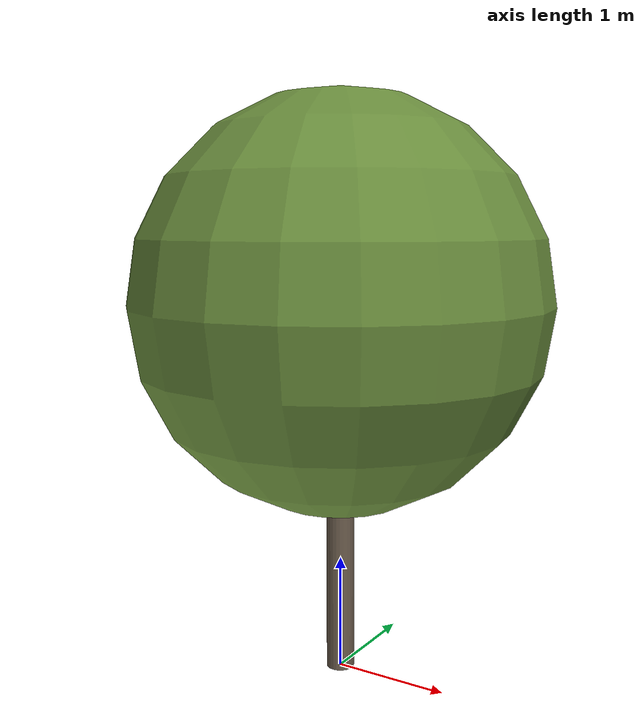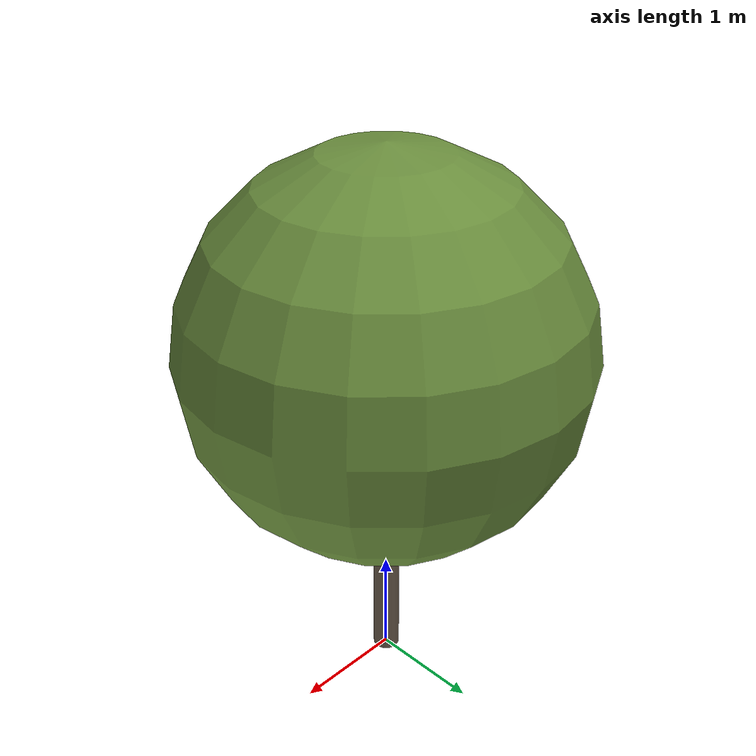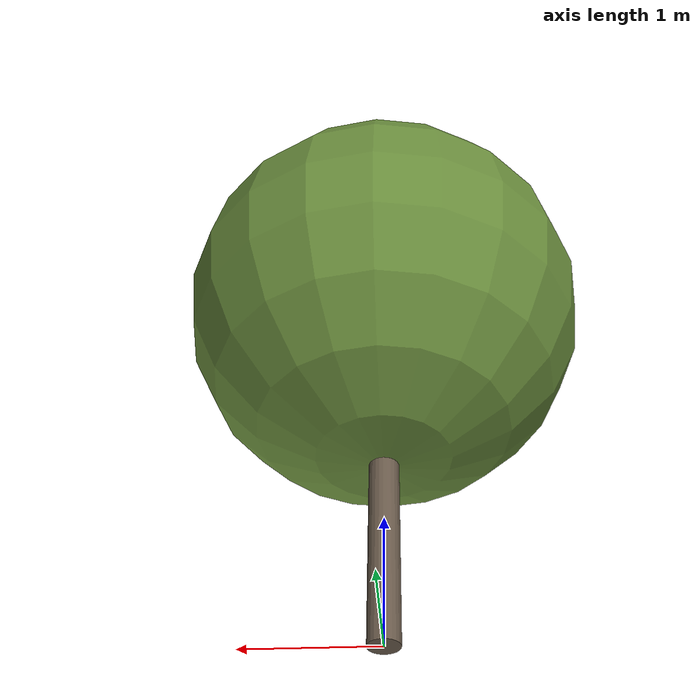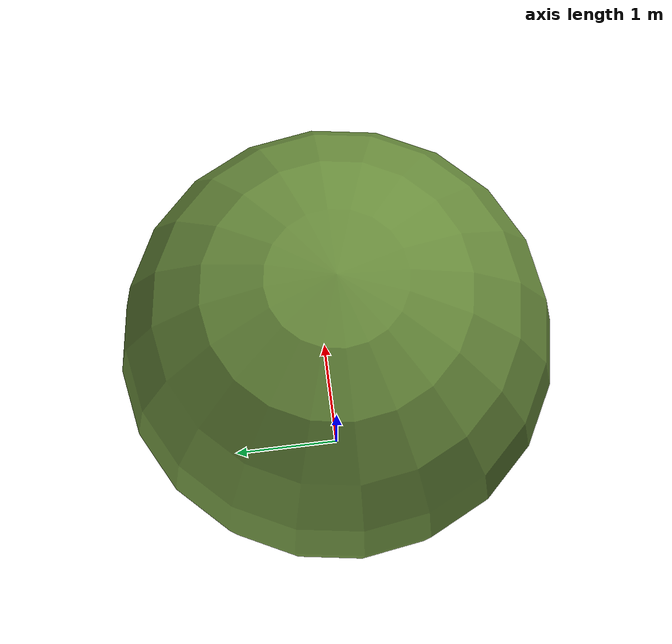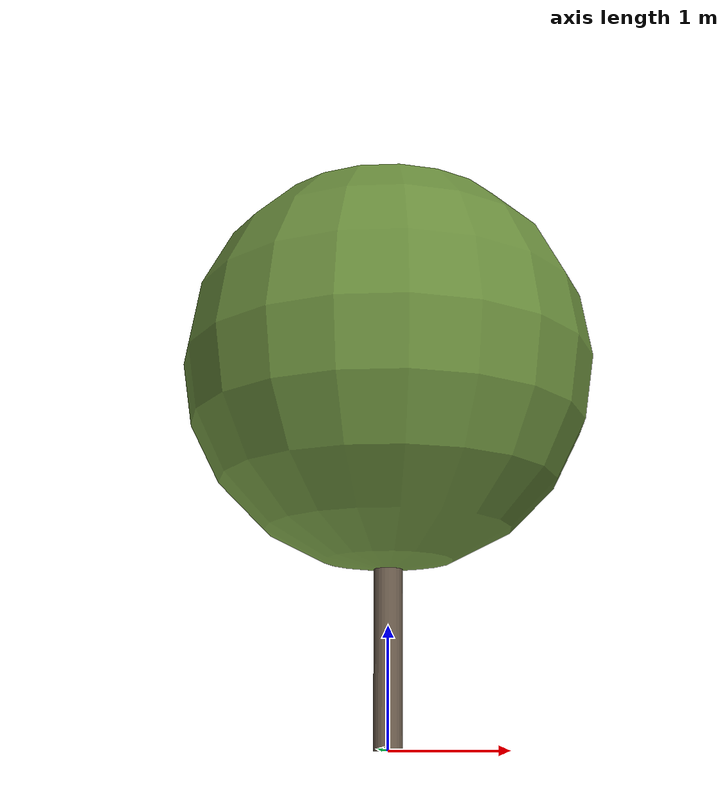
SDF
<?xml version="1.0" ?>
<sdf version="1.10">
  <model name="olivier_provence_18">
    <static>true</static>

    <!-- Tronc -->
    <link name="trunk">
      <pose>0 0 1.3508424634873173 0 0 0</pose>
      <visual name="trunk_visual">
        <geometry>
          <cylinder>
            <radius>0.12049877417488308</radius>
            <length>2.7016849269746346</length>
          </cylinder>
        </geometry>
        <material>
          <ambient>0.42 0.36 0.30 1</ambient>
          <diffuse>0.42 0.36 0.30 1</diffuse>
          <specular>0.1 0.1 0.1 1</specular>
        </material>
      </visual>
      <collision name="trunk_collision">
        <geometry>
          <cylinder>
            <radius>0.12049877417488308</radius>
            <length>2.7016849269746346</length>
          </cylinder>
        </geometry>
      </collision>
    </link>

    <!-- Feuillage -->
    <link name="crown">
      <pose>0 0 3.2368338960407965 0 0 0</pose>
      <visual name="crown_visual">
        <geometry>
          <sphere>
              <radius>1.783829896887207</radius>
            </sphere>
        </geometry>
        <material>
          <ambient>0.42 0.56 0.24 1</ambient>
          <diffuse>0.42 0.56 0.24 1</diffuse>
          <specular>0.1 0.1 0.1 1</specular>
        </material>
      </visual>
      <collision name="crown_collision">
        <geometry>
          <sphere>
            <radius>1.4270639175097657</radius>
          </sphere>
        </geometry>
      </collision>
    </link>

    <!-- Joint tronc-feuillage -->
    <joint name="trunk_crown_joint" type="fixed">
      <parent>trunk</parent>
      <child>crown</child>
    </joint>

  </model>
</sdf>
